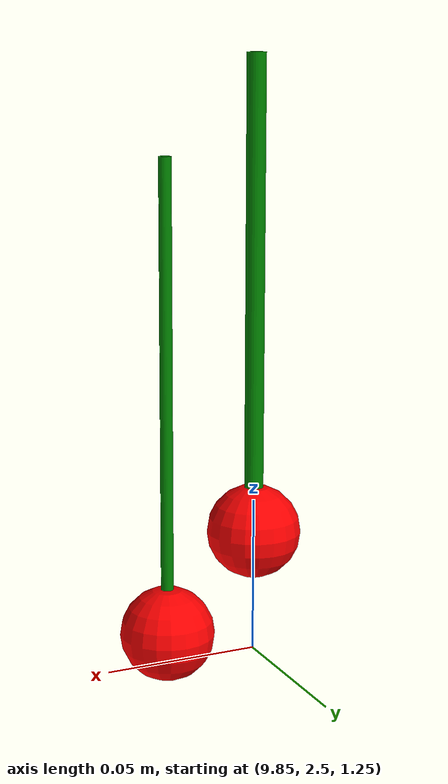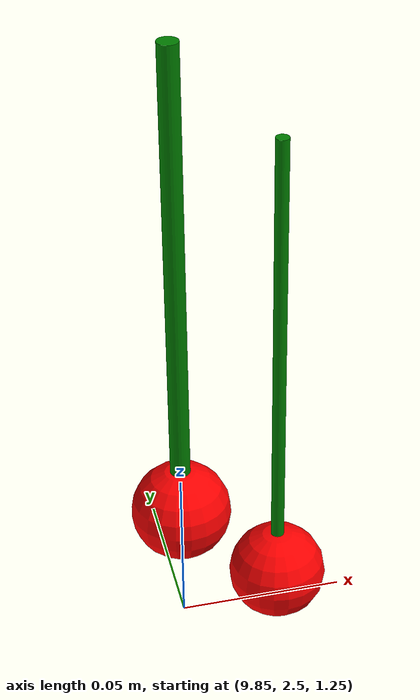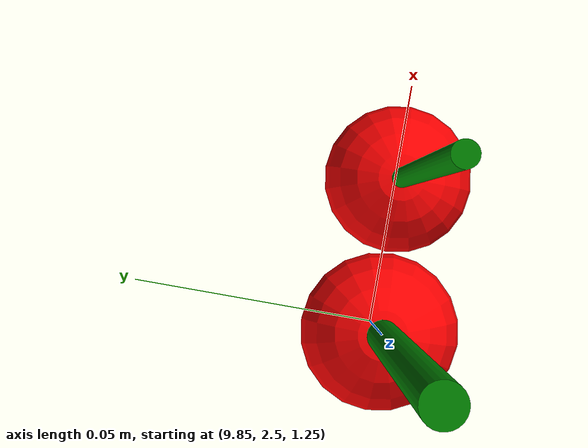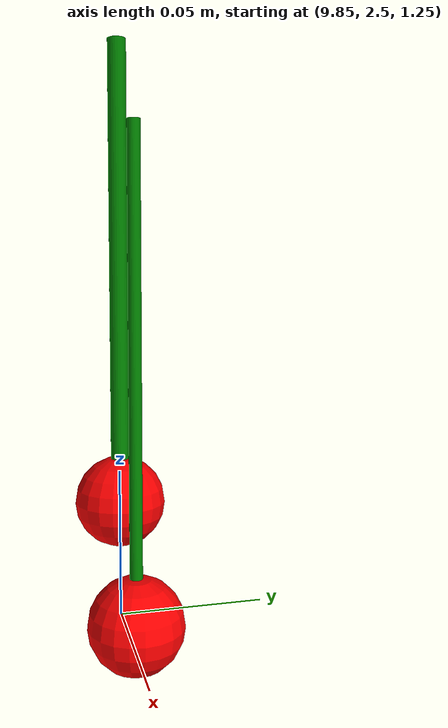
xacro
<?xml version="1.0"?>
<robot xmlns:xacro="http://www.ros.org/wiki/xacro" name="straw_cluster3">

<xacro:arg name="tf_prefix" default=""/>

<link name="world"/>

<!-- Robot7 -->
<link name="$(arg tf_prefix)/yball_stem7">
  <gravity>1</gravity>
  <inertial>
    <origin xyz="0 0 0" rpy="0 0 0"/>
    <mass value=".00001"/>
    <inertia ixx="0.0000004" ixy="0.0" ixz="0.0" iyy="0.0000004" iyz="0.0" izz="0.0000004" />  <!-- can't be smaller -->
  </inertial>
  <visual><geometry><sphere radius=".00001"/></geometry></visual>
  <collision><geometry><sphere radius=".00001"/></geometry></collision>
</link>
<gazebo reference="$(arg tf_prefix)/yball_stem7">
  <material>Gazebo/Green</material>
</gazebo>

<joint name="$(arg tf_prefix)/stem7y" type="revolute" >
  <parent link="world" />
  <child link="$(arg tf_prefix)/yball_stem7" />
  <origin xyz="9.85 2.5 1.44" rpy="0 0 0"/>
  <axis xyz="0 1 0" />
  <dynamics damping="0.0001" friction="0.0002"/>
  <limit
      lower="-${pi}" upper="${pi}"
      effort="1" velocity="0.1" />
</joint>

<link name="$(arg tf_prefix)/xball_stem7">
  <gravity>1</gravity>
  <inertial>
    <origin xyz="0 0 0" rpy="0 0 0"/>
    <mass value=".00001"/>
    <inertia ixx="0.0000004" ixy="0.0" ixz="0.0" iyy="0.0000004" iyz="0.0" izz="0.0000004" />
  </inertial>
  <visual><geometry><sphere radius=".00001"/></geometry></visual>
  <collision><geometry><sphere radius=".00001"/></geometry></collision>
</link>
<gazebo reference="$(arg tf_prefix)/xball_stem7">
  <material>Gazebo/Green</material>
</gazebo>

<joint name="$(arg tf_prefix)/stem7x" type="revolute" >
  <parent link="$(arg tf_prefix)/yball_stem7"/>
  <child link="$(arg tf_prefix)/xball_stem7"/>
  <origin xyz="0 0 0" rpy="0 0 0"/>
  <axis xyz="1 0 0" />
  <dynamics damping="0.0001" friction="0.0002" />
  <limit
      lower="-${pi}" upper="${pi}"
      effort="1" velocity="0.1" />
</joint>

<!-- Define stem of straw7 -->
<link name="$(arg tf_prefix)/stem7">
  <gravity>1</gravity>
  <inertial>
    <origin xyz="0 0 0" rpy="0 0 0"/>
    <mass value="0.001"/>
    <inertia
      ixx="0.0000000005" ixy="0.0" ixz="0.0"
      iyy="0.0000000005" iyz="0.0"
      izz="0.0000000005"/>
  </inertial>
  <collision>
    <geometry>
		<cylinder length="0.15" radius="0.003"/>
    </geometry>
    <material name="green">
      <color rgba="0 ${128/255} 0 1"/>
    </material>
    <origin xyz="0 0 -0.075" rpy="0 0 0"/>
  </collision>
  <visual>
    <geometry>
		<cylinder length="0.15" radius="0.003"/>
    </geometry>
    <material name="green">
      <color rgba="0 ${128/255} 0 1"/>
    </material>
    <origin xyz="0 0 -0.075" rpy="0 0 0"/>
  </visual>
</link>
<gazebo reference="$(arg tf_prefix)/stem7">
  <mu1>0.01</mu1>
  <mu2>0.01</mu2>
  <selfCollide>true</selfCollide>
  <maxContacts>2</maxContacts>
  <minDepth>0</minDepth>
  <maxVel>0.01</maxVel>
  <kp  value="1" />
  <kd  value="0.1" />
  <material>Gazebo/Green</material>
</gazebo>

<joint name="$(arg tf_prefix)/xball_stem7" type="fixed">
  <parent link="$(arg tf_prefix)/xball_stem7"/>
  <child link="$(arg tf_prefix)/stem7"/>
  <origin xyz="0 0 0" rpy="0 0 0"/>
</joint>

<!-- Define straw4 -->
<link name="$(arg tf_prefix)/straw7">
  <gravity>1</gravity>
  <inertial>
    <origin xyz="0 0 0" rpy="0 0 0"/>
    <mass value="0.002"/>
    <inertia
      ixx="0.00000018" ixy="0.0" ixz="0.0"
      iyy="0.00000018" iyz="0.0"
      izz="0.00000018"/>
  </inertial>
  <collision>
    <geometry>
      <sphere radius="0.015"/>
    </geometry>
  </collision>
  <visual>
    <geometry>
		<sphere radius="0.015"/>
    </geometry>
    <material name="Red">
      <color rgba="1 0 0 1"/>
    </material>
  </visual>
</link>
<gazebo reference="$(arg tf_prefix)/straw7">
  <mu1>0.01</mu1>
  <mu2>0.01</mu2>
  <selfCollide>true</selfCollide>
  <maxContacts>2</maxContacts>
  <minDepth>0</minDepth>
  <maxVel>0.01</maxVel>
  <kp  value="1" />
  <kd  value="0.1" />
  <material>Gazebo/Red</material>
</gazebo>

<joint name="$(arg tf_prefix)/straw7_stem7" type="fixed">
  <parent link="$(arg tf_prefix)/stem7"/>
  <child link="$(arg tf_prefix)/straw7"/>
  <origin xyz="0 0 -0.15" rpy="0 0 0"/>
</joint>

<!-- Robot2 -->
<link name="$(arg tf_prefix)/yball_stem8">
  <gravity>1</gravity>
  <inertial>
    <origin xyz="0 0 0" rpy="0 0 0"/>
    <mass value=".00001"/>
    <inertia ixx="0.0000004" ixy="0.0" ixz="0.0" iyy="0.0000004" iyz="0.0" izz="0.0000004" />
  </inertial>
  <visual><geometry><sphere radius=".00001"/></geometry></visual>
  <collision><geometry><sphere radius=".00001"/></geometry></collision>
</link>
<gazebo reference="$(arg tf_prefix)/yball_stem8">
  <material>Gazebo/Green</material>
</gazebo>

<joint name="$(arg tf_prefix)/stem8y" type="revolute" >
  <parent link="world" />
  <child link="$(arg tf_prefix)/yball_stem8" />
  <origin xyz="9.88 2.5 1.41" rpy="0 0 0"/> <!-- -0.12 0.5 1.16 for /base_link as reference-->
  <axis xyz="0 1 0" />
  <dynamics damping="0.0001" friction="0.0002"/>
  <limit
      lower="-${pi}" upper="${pi}"
      effort="1" velocity="0.1" />
</joint>

<link name="$(arg tf_prefix)/xball_stem8">
  <gravity>1</gravity>
  <inertial>
    <origin xyz="0 0 0" rpy="0 0 0"/>
    <mass value=".00001"/>
    <inertia ixx="0.0000004" ixy="0.0" ixz="0.0" iyy="0.0000004" iyz="0.0" izz="0.0000004" />
  </inertial>
  <visual><geometry><sphere radius=".00001"/></geometry></visual>
  <collision><geometry><sphere radius=".00001"/></geometry></collision>
</link>
<gazebo reference="$(arg tf_prefix)/xball_stem8">
  <material>Gazebo/Green</material>
</gazebo>

<joint name="$(arg tf_prefix)/stem8x" type="revolute" >
  <parent link="$(arg tf_prefix)/yball_stem8"/>
  <child link="$(arg tf_prefix)/xball_stem8"/>
  <origin xyz="0 0 0" rpy="0 0 0"/>
  <axis xyz="1 0 0" />
  <dynamics damping="0.0001" friction="0.0002" />
  <limit
      lower="-${pi}" upper="${pi}"
      effort="1" velocity="0.1" />
</joint>

<!-- Define stem of straw8 -->
<link name="$(arg tf_prefix)/stem8">
  <gravity>1</gravity>
  <inertial>
    <origin xyz="0 0 0" rpy="0 0 0"/>
    <mass value="0.001"/>
    <inertia
      ixx="0.0000000005" ixy="0.0" ixz="0.0"
      iyy="0.0000000005" iyz="0.0"
      izz="0.0000000005"/>
  </inertial>
  <collision>
    <geometry>
		  <cylinder length="0.1" radius="0.003"/>
    </geometry>
    <material name="green">
      <color rgba="0 ${128/255} 0 1"/>
    </material>
    <origin xyz="0 0 -0.075" rpy="0 0 0"/>
  </collision>
  <visual>
    <geometry>
		<cylinder length="0.15" radius="0.002"/>
    </geometry>
    <material name="green">
      <color rgba="0 ${128/255} 0 1"/>
    </material>
    <origin xyz="0 0 -0.075" rpy="0 0 0"/>
  </visual>
</link>
<gazebo reference="$(arg tf_prefix)/stem8">
  <mu1>0.01</mu1>
  <mu2>0.01</mu2>
  <selfCollide>true</selfCollide>
  <maxContacts>2</maxContacts>
  <minDepth>0</minDepth>
  <kp  value="1" />
  <kd  value="0.1" />
  <material>Gazebo/Green</material>
</gazebo>

<joint name="$(arg tf_prefix)/xball_stem8" type="fixed">
  <parent link="$(arg tf_prefix)/xball_stem8"/>
  <child link="$(arg tf_prefix)/stem8"/>
  <origin xyz="0 0 0" rpy="0 0 0"/>
</joint>

<!-- Define straw5 -->
<link name="$(arg tf_prefix)/straw8">
  <gravity>1</gravity>
  <inertial>
    <origin xyz="0 0 0" rpy="0 0 0"/>
    <mass value="0.002"/>
    <inertia
      ixx="0.00000018" ixy="0.0" ixz="0.0"
      iyy="0.00000018" iyz="0.0"
      izz="0.00000018"/>
  </inertial>
  <collision>
    <geometry>
    <sphere radius="0.015"/>
    </geometry>
  </collision>
  <visual>
    <geometry>
		<sphere radius="0.015"/>
    </geometry>
    <material name="Red">
      <color rgba="1 0 0 1"/>
    </material>
  </visual>
</link>
<gazebo reference="$(arg tf_prefix)/straw8">
  <mu1>0.01</mu1>
  <mu2>0.01</mu2>
  <selfCollide>true</selfCollide>
  <maxContacts>2</maxContacts>
  <minDepth>0</minDepth>
  <kp  value="1" />
  <kd  value="0.1" />
  <material>Gazebo/Red</material>
</gazebo>

<joint name="$(arg tf_prefix)/straw8_stem8" type="fixed">
  <parent link="$(arg tf_prefix)/stem8"/>
  <child link="$(arg tf_prefix)/straw8"/>
  <origin xyz="0 0 -0.15" rpy="0 0 0"/>
</joint>

</robot>
